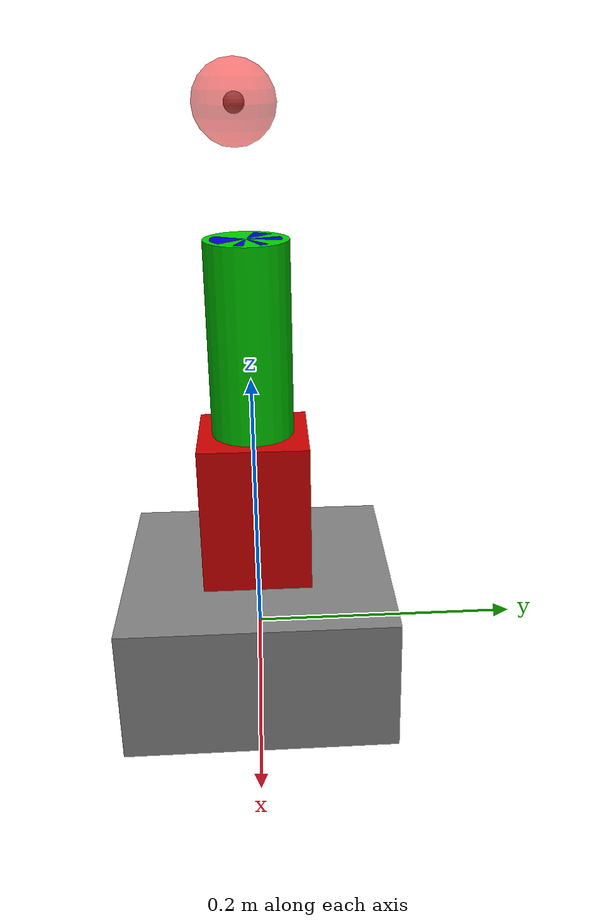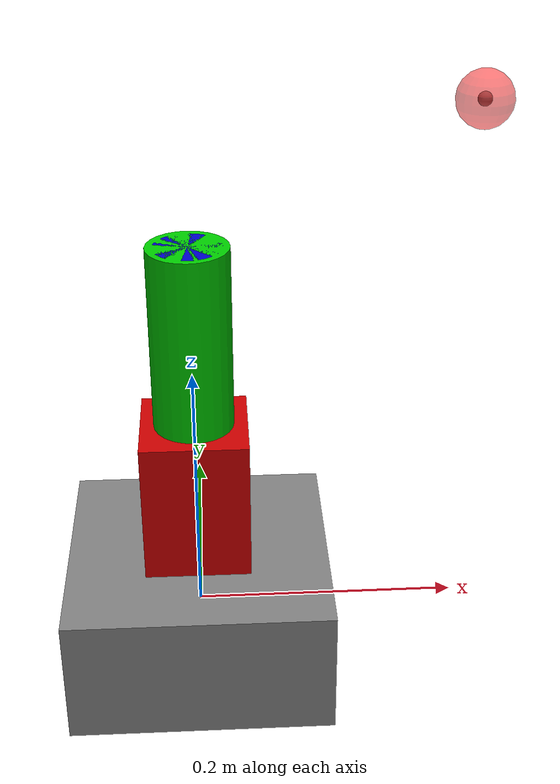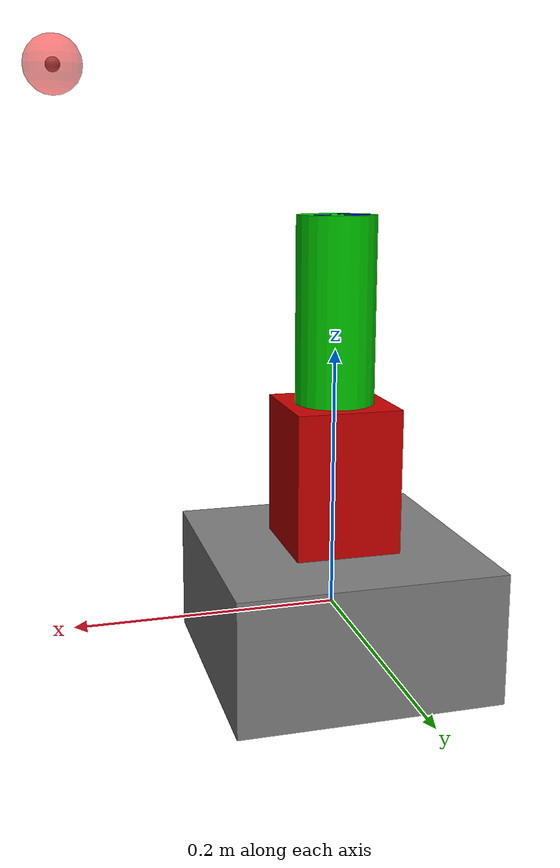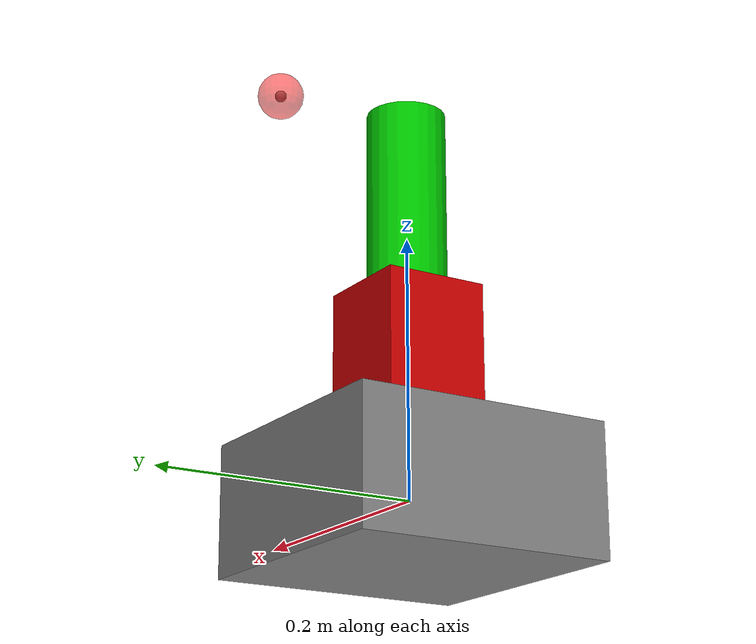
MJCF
<mujoco>
  <option timestep="0.01"/>

  <visual>
    <global offwidth="800" offheight="600"/>
  </visual>

  <worldbody>
    <!-- Base -->
    <body name="base" pos="0 0 0">
      <geom type="box" size="0.1 0.1 0.05" rgba="0.5 0.5 0.5 1"/>

      <!-- Shoulder joint (flexion/extension) -->
      <body name="upper_arm">
        <joint name="shoulder" type="hinge" axis="0 1 0" range="-90 90" damping="0.5"/>
        <geom type="cylinder" size="0.03 0.15" pos="0 0 0.15" rgba="0 0.8 0 1"/>

        <!-- Elbow joint (flexion/extension) -->
        <body name="forearm">
          <joint name="elbow" type="hinge" axis="0 1 0" range="-90 90" damping="0.5"/>
          <geom type="cylinder" size="0.025 0.15" pos="0 0 0.15" rgba="0 0 0.8 1"/>

          <!-- Wrist joint (pronation/supination) -->
          <body name="hand">
            <joint name="wrist" type="hinge" axis="1 0 0" range="-45 45" damping="0.3"/>
            <geom type="box" size="0.04 0.04 0.06" pos="0 0 0.1" rgba="0.8 0 0 1"/>

            <!-- End effector -->
            <site name="grip_center" pos="0 0 0.12" size="0.01"/>
          </body>
        </body>
      </body>
    </body>

    <!-- Target for IK -->
    <body name="target" pos="0.2 0 0.4">
      <geom type="sphere" size="0.02" rgba="1 0 0 0.5"/>
      <site name="target_site"/>
    </body>
  </worldbody>

  <actuator>
    <motor joint="shoulder" gear="50" ctrlrange="-100 100"/>
    <motor joint="elbow" gear="50" ctrlrange="-100 100"/>
    <motor joint="wrist" gear="30" ctrlrange="-50 50"/>
  </actuator>
</mujoco>
